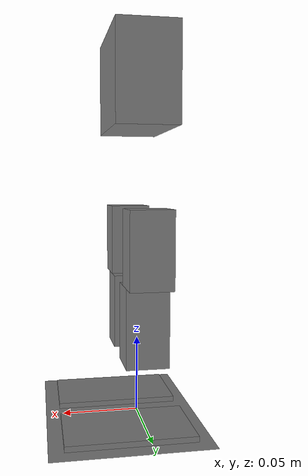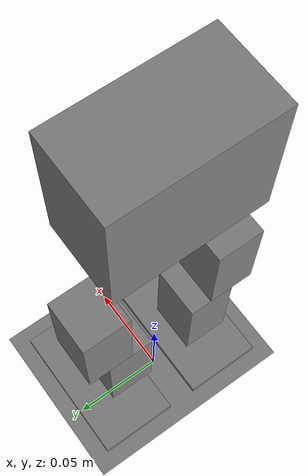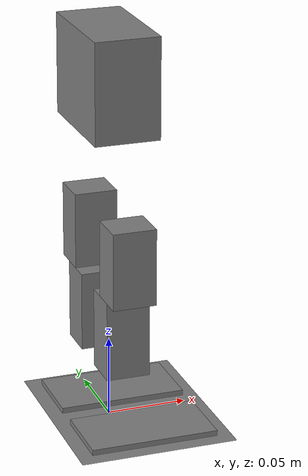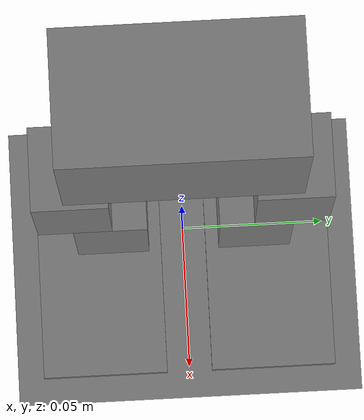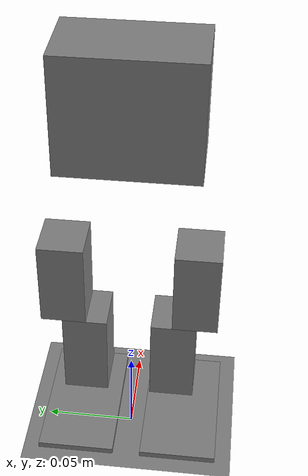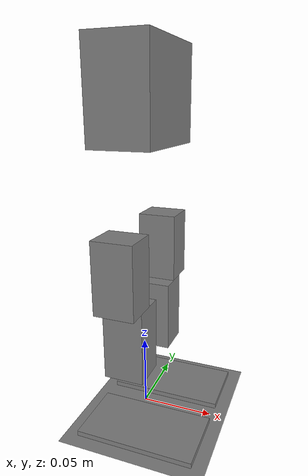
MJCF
<mujoco model="cadex-assembly">
  <compiler angle="radian" autolimits="false"/>

  <option integrator="implicitfast">
    <flag island="disable"/>
  </option>

  <size nkey="1"/>

  <worldbody>
    <body name="c_floor">
      <inertial pos="0 0 -0.002" quat="0.5 0.5 -0.5 0.5" mass="0.768" diaginertia="0.02048 0.010241 0.010241"/>
      <geom name="c_floor/collision0" size="0.2 0.2 0.05" type="plane" conaffinity="2147483647"/>
    </body>
    <body name="c_torso" pos="0 0 0.219">
      <inertial pos="0.00132326 4.52762e-06 0.00225201" quat="0.999574 0.000435019 -0.0291813 -3.19179e-05" mass="0.1356" diaginertia="0.000153369 0.000112191 7.39475e-05"/>
      <joint name="c_torso/free" type="free"/>
      <geom name="c_torso/collision0" size="0.02 0.036 0.031" type="box" conaffinity="2147483647"/>
      <body name="c_hip_l" pos="0 0.03 -0.066">
        <inertial pos="-0.00760718 0.00563305 0.0101238" quat="0.935924 0.0135927 -0.163726 0.311536" mass="0.0148157" diaginertia="2.82886e-06 2.64849e-06 1.44315e-06"/>
        <joint name="hip_roll_l" pos="0 0 0.015" axis="1 0 0" limited="true" range="-0.436332 0.436332" armature="2.5e-05" damping="0.0171887" frictionloss="0.0015"/>
        <body name="c_thigh_l" pos="0 0 -0.039">
          <inertial pos="-0.00283121 -0.00372486 0.0129506" quat="0.99265 -0.000839526 -0.0551209 -0.107734" mass="0.0237263" diaginertia="9.76817e-06 8.00539e-06 4.33028e-06"/>
          <joint name="hip_pitch_l" pos="0 0 0.024" axis="0 1 0" limited="true" range="-0.959931 0.698132" armature="2.5e-05" damping="0.0171887" frictionloss="0.0015"/>
          <geom name="c_thigh_l/collision0" size="0.0135 0.01225 0.024" pos="0 0.00575 0" type="box" conaffinity="2147483647"/>
          <body name="c_shin_l" pos="0 0 -0.049">
            <inertial pos="-0.00292798 0.00339079 0.0129504" quat="0.994278 -0.00677748 -0.0481246 0.0951316" mass="0.024844" diaginertia="1.06524e-05 8.82041e-06 4.55684e-06"/>
            <joint name="knee_l" pos="0 0 0.025" axis="0 1 0" limited="true" range="-0.0872665 1.65806" armature="2.5e-05" damping="0.0171887" frictionloss="0.0015"/>
            <geom name="c_shin_l/collision0" size="0.0135 0.01225 0.025" pos="0 -0.00575 0" type="box" conaffinity="2147483647"/>
            <body name="c_ankle_l" pos="0 0 -0.037">
              <inertial pos="-0.00351083 -0.00816112 0.0094974" quat="0.0507613 0.713518 0.562748 0.414283" mass="0.0139252" diaginertia="2.22528e-06 2.15682e-06 1.25039e-06"/>
              <joint name="ankle_pitch_l" pos="0 0 0.012" axis="0 1 0" limited="true" range="-0.698132 0.698132" armature="2.5e-05" damping="0.0171887" frictionloss="0.0015"/>
              <body name="c_foot_l" pos="0.012 0 -0.02">
                <inertial pos="-0.0106153 0.0023885 -0.000489322" quat="0.000715118 0.759676 -0.0811428 0.645219" mass="0.0296388" diaginertia="1.61379e-05 1.38871e-05 4.57778e-06"/>
                <joint name="ankle_roll_l" pos="-0.012 0 0.008" axis="1 0 0" limited="true" range="-0.436332 0.436332" armature="2.5e-05" damping="0.0171887" frictionloss="0.0015"/>
                <geom name="c_foot_l/collision0" size="0.04 0.022 0.00175" pos="0 0 -0.00625" type="box" conaffinity="2147483647" friction="1.2"/>
              </body>
            </body>
          </body>
        </body>
      </body>
      <body name="c_hip_r" pos="0 -0.03 -0.066">
        <inertial pos="-0.00760718 -0.00563305 0.0101238" quat="0.935924 -0.0135927 -0.163726 -0.311536" mass="0.0148157" diaginertia="2.82886e-06 2.64849e-06 1.44315e-06"/>
        <joint name="hip_roll_r" pos="0 0 0.015" axis="1 0 0" limited="true" range="-0.436332 0.436332" armature="2.5e-05" damping="0.0171887" frictionloss="0.0015"/>
        <body name="c_thigh_r" pos="0 0 -0.039">
          <inertial pos="-0.00283121 0.00372486 0.0129506" quat="0.99265 0.000839526 -0.0551209 0.107734" mass="0.0237263" diaginertia="9.76817e-06 8.00539e-06 4.33028e-06"/>
          <joint name="hip_pitch_r" pos="0 0 0.024" axis="0 1 0" limited="true" range="-0.959931 0.698132" armature="2.5e-05" damping="0.0171887" frictionloss="0.0015"/>
          <geom name="c_thigh_r/collision0" size="0.0135 0.01225 0.024" pos="0 -0.00575 0" type="box" conaffinity="2147483647"/>
          <body name="c_shin_r" pos="0 0 -0.049">
            <inertial pos="-0.00292798 -0.00339079 0.0129504" quat="0.994278 0.00677748 -0.0481246 -0.0951316" mass="0.024844" diaginertia="1.06524e-05 8.82041e-06 4.55684e-06"/>
            <joint name="knee_r" pos="0 0 0.025" axis="0 1 0" limited="true" range="-0.0872665 1.65806" armature="2.5e-05" damping="0.0171887" frictionloss="0.0015"/>
            <geom name="c_shin_r/collision0" size="0.0135 0.01225 0.025" pos="0 0.00575 0" type="box" conaffinity="2147483647"/>
            <body name="c_ankle_r" pos="0 0 -0.037">
              <inertial pos="-0.00351083 0.00816112 0.0094974" quat="0.414283 0.562748 0.713518 0.0507613" mass="0.0139252" diaginertia="2.22528e-06 2.15682e-06 1.25039e-06"/>
              <joint name="ankle_pitch_r" pos="0 0 0.012" axis="0 1 0" limited="true" range="-0.698132 0.698132" armature="2.5e-05" damping="0.0171887" frictionloss="0.0015"/>
              <body name="c_foot_r" pos="0.012 0 -0.02">
                <inertial pos="-0.0106153 -0.0023885 -0.000489322" quat="-0.000715118 0.759676 0.0811428 0.645219" mass="0.0296388" diaginertia="1.61379e-05 1.38871e-05 4.57778e-06"/>
                <joint name="ankle_roll_r" pos="-0.012 0 0.008" axis="1 0 0" limited="true" range="-0.436332 0.436332" armature="2.5e-05" damping="0.0171887" frictionloss="0.0015"/>
                <geom name="c_foot_r/collision0" size="0.04 0.022 0.00175" pos="0 0 -0.00625" type="box" conaffinity="2147483647" friction="1.2"/>
              </body>
            </body>
          </body>
        </body>
      </body>
    </body>
  </worldbody>

  <contact>
    <exclude name="c_hip_l|c_torso" body1="c_torso" body2="c_hip_l"/>
    <exclude name="c_hip_r|c_torso" body1="c_torso" body2="c_hip_r"/>
    <exclude name="c_hip_l|c_thigh_l" body1="c_hip_l" body2="c_thigh_l"/>
    <exclude name="c_shin_l|c_thigh_l" body1="c_thigh_l" body2="c_shin_l"/>
    <exclude name="c_ankle_l|c_shin_l" body1="c_shin_l" body2="c_ankle_l"/>
    <exclude name="c_ankle_l|c_foot_l" body1="c_ankle_l" body2="c_foot_l"/>
    <exclude name="c_hip_r|c_thigh_r" body1="c_hip_r" body2="c_thigh_r"/>
    <exclude name="c_shin_r|c_thigh_r" body1="c_thigh_r" body2="c_shin_r"/>
    <exclude name="c_ankle_r|c_shin_r" body1="c_shin_r" body2="c_ankle_r"/>
    <exclude name="c_ankle_r|c_foot_r" body1="c_ankle_r" body2="c_foot_r"/>
  </contact>

  <actuator>
    <general name="hip_roll_l/position" joint="hip_roll_l" ctrllimited="false" forcelimited="true" forcerange="-0.216 0.216" biastype="affine" gainprm="1.43239" biasprm="0 -1.43239 -0.0572958"/>
    <general name="hip_pitch_l/position" joint="hip_pitch_l" ctrllimited="false" forcelimited="true" forcerange="-0.216 0.216" biastype="affine" gainprm="1.43239" biasprm="0 -1.43239 -0.0572958"/>
    <general name="knee_l/position" joint="knee_l" ctrllimited="false" forcelimited="true" forcerange="-0.216 0.216" biastype="affine" gainprm="1.43239" biasprm="0 -1.43239 -0.0572958"/>
    <general name="ankle_pitch_l/position" joint="ankle_pitch_l" ctrllimited="false" forcelimited="true" forcerange="-0.216 0.216" biastype="affine" gainprm="1.43239" biasprm="0 -1.43239 -0.0572958"/>
    <general name="ankle_roll_l/position" joint="ankle_roll_l" ctrllimited="false" forcelimited="true" forcerange="-0.216 0.216" biastype="affine" gainprm="1.43239" biasprm="0 -1.43239 -0.0572958"/>
    <general name="hip_roll_r/position" joint="hip_roll_r" ctrllimited="false" forcelimited="true" forcerange="-0.216 0.216" biastype="affine" gainprm="1.43239" biasprm="0 -1.43239 -0.0572958"/>
    <general name="hip_pitch_r/position" joint="hip_pitch_r" ctrllimited="false" forcelimited="true" forcerange="-0.216 0.216" biastype="affine" gainprm="1.43239" biasprm="0 -1.43239 -0.0572958"/>
    <general name="knee_r/position" joint="knee_r" ctrllimited="false" forcelimited="true" forcerange="-0.216 0.216" biastype="affine" gainprm="1.43239" biasprm="0 -1.43239 -0.0572958"/>
    <general name="ankle_pitch_r/position" joint="ankle_pitch_r" ctrllimited="false" forcelimited="true" forcerange="-0.216 0.216" biastype="affine" gainprm="1.43239" biasprm="0 -1.43239 -0.0572958"/>
    <general name="ankle_roll_r/position" joint="ankle_roll_r" ctrllimited="false" forcelimited="true" forcerange="-0.216 0.216" biastype="affine" gainprm="1.43239" biasprm="0 -1.43239 -0.0572958"/>
  </actuator>

  <sensor>
    <jointpos joint="hip_roll_l" name="obs/0"/>
    <jointvel joint="hip_roll_l" name="obs/1"/>

    <actuatorfrc actuator="hip_roll_l/position" name="obs/2"/>
    <jointpos joint="hip_pitch_l" name="obs/3"/>
    <jointvel joint="hip_pitch_l" name="obs/4"/>

    <actuatorfrc actuator="hip_pitch_l/position" name="obs/5"/>
    <jointpos joint="knee_l" name="obs/6"/>
    <jointvel joint="knee_l" name="obs/7"/>

    <actuatorfrc actuator="knee_l/position" name="obs/8"/>
    <jointpos joint="ankle_pitch_l" name="obs/9"/>
    <jointvel joint="ankle_pitch_l" name="obs/10"/>

    <actuatorfrc actuator="ankle_pitch_l/position" name="obs/11"/>
    <jointpos joint="ankle_roll_l" name="obs/12"/>
    <jointvel joint="ankle_roll_l" name="obs/13"/>

    <actuatorfrc actuator="ankle_roll_l/position" name="obs/14"/>
    <jointpos joint="hip_roll_r" name="obs/15"/>
    <jointvel joint="hip_roll_r" name="obs/16"/>

    <actuatorfrc actuator="hip_roll_r/position" name="obs/17"/>
    <jointpos joint="hip_pitch_r" name="obs/18"/>
    <jointvel joint="hip_pitch_r" name="obs/19"/>

    <actuatorfrc actuator="hip_pitch_r/position" name="obs/20"/>
    <jointpos joint="knee_r" name="obs/21"/>
    <jointvel joint="knee_r" name="obs/22"/>

    <actuatorfrc actuator="knee_r/position" name="obs/23"/>
    <jointpos joint="ankle_pitch_r" name="obs/24"/>
    <jointvel joint="ankle_pitch_r" name="obs/25"/>

    <actuatorfrc actuator="ankle_pitch_r/position" name="obs/26"/>
    <jointpos joint="ankle_roll_r" name="obs/27"/>
    <jointvel joint="ankle_roll_r" name="obs/28"/>

    <actuatorfrc actuator="ankle_roll_r/position" name="obs/29"/>
    <framequat objtype="xbody" objname="c_torso" name="obs/30"/>
    <frameangvel objtype="xbody" objname="c_torso" name="obs/31"/>
    <subtreecom body="c_torso" name="obs/32"/>
    <subtreelinvel body="c_torso" name="obs/33"/>
    <subtreeangmom body="c_torso" name="obs/34"/>
  </sensor>

  <keyframe>
    <key name="solved" qpos="0 0 0.219 1 0 0 0 0 0 0 0 0 0 0 0 0 0"/>
  </keyframe>
</mujoco>
